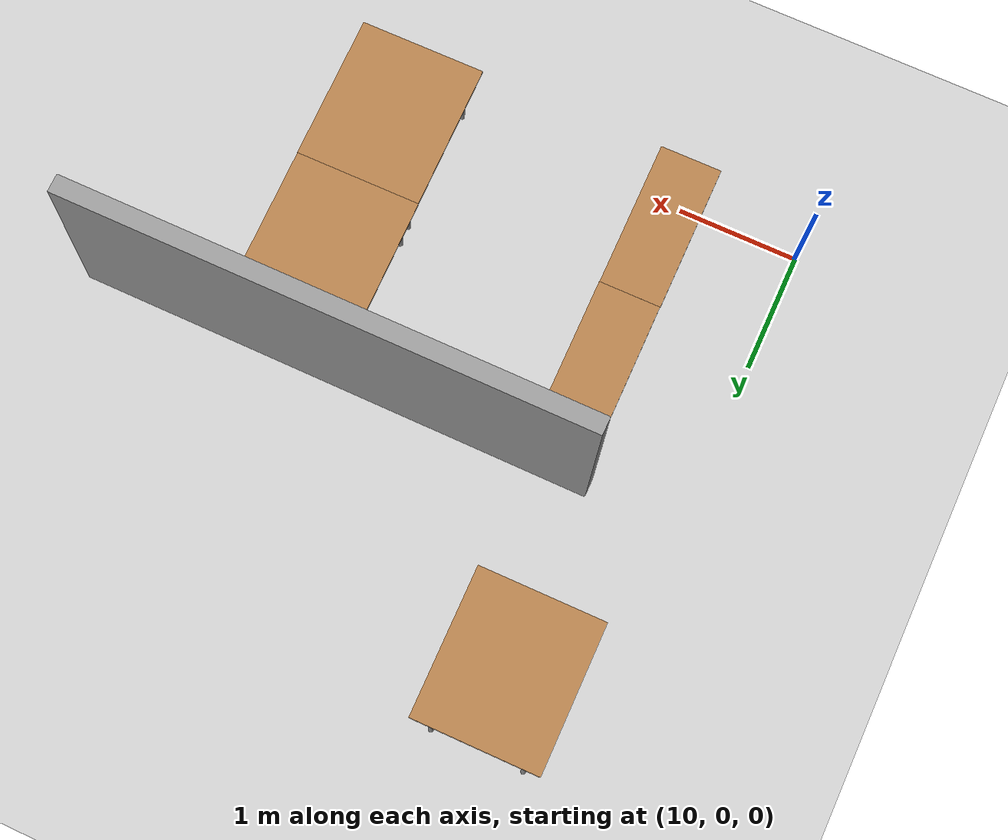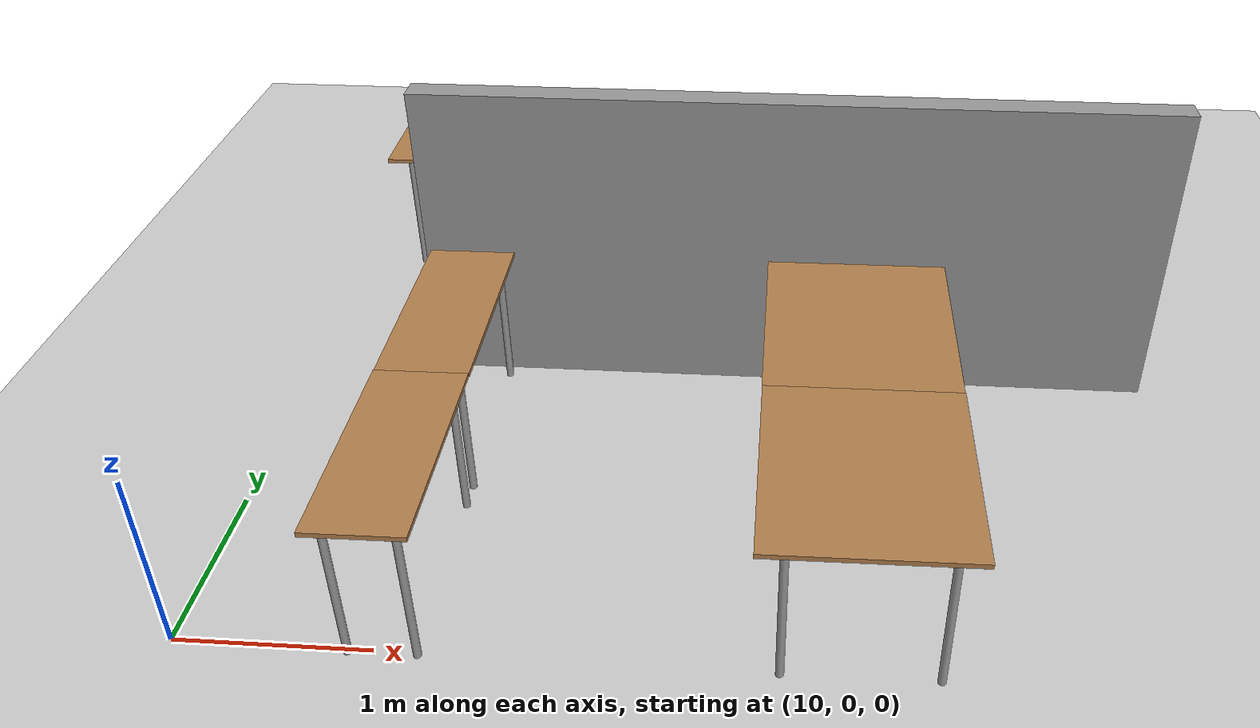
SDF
<sdf version="1.7">
 <world name="default">
  <model name="work_station_clone_clone_clone_clone_clone_clone">
   <link name="link">
    <inertial>
     <inertia><ixx>0</ixx><ixy>0</ixy><ixz>0</ixz><iyy>0</iyy><iyz>0</iyz><izz>0</izz></inertia>
     <mass>0</mass>
    </inertial>
    <visual name="back_right_leg">
     <pose>-0.53 -0.38 0.42 0 -0 0</pose>
     <geometry><cylinder><radius>0.0207459</radius><length>0.822541</length></cylinder></geometry>
     <material>
      <script><uri>file://media/materials/scripts/gazebo.material</uri><name>Gazebo/Grey</name></script>
      <shader type="pixel"><normal_map>__default__</normal_map></shader>
      <ambient>0.3 0.3 0.3 1</ambient>
      <diffuse>0.7 0.7 0.7 1</diffuse>
      <specular>0.01 0.01 0.01 1</specular>
      <emissive>0 0 0 1</emissive>
     </material>
    </visual>
    <visual name="back_left_leg">
     <pose>-0.53 0.38 0.42 0 -0 0</pose>
     <geometry><cylinder><radius>0.0207459</radius><length>0.822541</length></cylinder></geometry>
     <material>
      <script><uri>file://media/materials/scripts/gazebo.material</uri><name>Gazebo/Grey</name></script>
      <shader type="pixel"><normal_map>__default__</normal_map></shader>
      <ambient>0.3 0.3 0.3 1</ambient>
      <diffuse>0.7 0.7 0.7 1</diffuse>
      <specular>0.01 0.01 0.01 1</specular>
      <emissive>0 0 0 1</emissive>
     </material>
    </visual>
    <visual name="front_left_leg">
     <pose>0.53 0.38 0.42 0 -0 0</pose>
     <geometry><cylinder><radius>0.0207459</radius><length>0.822541</length></cylinder></geometry>
     <material>
      <script><uri>file://media/materials/scripts/gazebo.material</uri><name>Gazebo/Grey</name></script>
      <shader type="pixel"><normal_map>__default__</normal_map></shader>
      <ambient>0.3 0.3 0.3 1</ambient>
      <diffuse>0.7 0.7 0.7 1</diffuse>
      <specular>0.01 0.01 0.01 1</specular>
      <emissive>0 0 0 1</emissive>
     </material>
    </visual>
    <visual name="visual1">
     <pose>0 0 0.84 0 -0 0</pose>
     <geometry><box><size>1.21551 1.02942 0.025485</size></box></geometry>
     <material>
      <script><uri>file://media/materials/scripts/gazebo.material</uri><name>Gazebo/Wood</name></script>
      <shader type="pixel"><normal_map>__default__</normal_map></shader>
      <ambient>1 1 1 1</ambient>
      <diffuse>1 1 1 1</diffuse>
      <specular>0.2 0.2 0.2 1</specular>
      <emissive>0 0 0 1</emissive>
     </material>
    </visual>
    <visual name="front_right_leg">
     <pose>0.53 -0.38 0.42 0 -0 0</pose>
     <geometry><cylinder><radius>0.0207459</radius><length>0.822541</length></cylinder></geometry>
     <material>
      <script><uri>file://media/materials/scripts/gazebo.material</uri><name>Gazebo/Grey</name></script>
      <shader type="pixel"><normal_map>__default__</normal_map></shader>
      <ambient>0.3 0.3 0.3 1</ambient>
      <diffuse>0.7 0.7 0.7 1</diffuse>
      <specular>0.01 0.01 0.01 1</specular>
      <emissive>0 0 0 1</emissive>
     </material>
    </visual>
    <collision name="surface">
     <pose>0 0 0.84 0 -0 0</pose>
     <geometry><box><size>1.21551 1.02942 0.025485</size></box></geometry>
     <surface>
      <friction>
       <ode><mu>0.6</mu><mu2>0.6</mu2><fdir1>0 0 0</fdir1><slip1>0</slip1><slip2>0</slip2></ode>
       <torsional>
        <coefficient>1</coefficient>
        <patch_radius>0</patch_radius>
        <surface_radius>0</surface_radius>
        <use_patch_radius>1</use_patch_radius>
        <ode><slip>0</slip></ode>
       </torsional>
      </friction>
      <bounce><restitution_coefficient>0</restitution_coefficient><threshold>1e+06</threshold></bounce>
      <contact>
       <collide_without_contact>0</collide_without_contact>
       <collide_without_contact_bitmask>1</collide_without_contact_bitmask>
       <collide_bitmask>1</collide_bitmask>
       <ode>
        <soft_cfm>0</soft_cfm>
        <soft_erp>0.2</soft_erp>
        <kp>1e+13</kp>
        <kd>1</kd>
        <max_vel>0.01</max_vel>
        <min_depth>0</min_depth>
       </ode>
       <bullet>
        <split_impulse>1</split_impulse>
        <split_impulse_penetration_threshold>-0.01</split_impulse_penetration_threshold>
        <soft_cfm>0</soft_cfm>
        <soft_erp>0.2</soft_erp>
        <kp>1e+13</kp>
        <kd>1</kd>
       </bullet>
      </contact>
     </surface>
    </collision>
    <collision name="front_left_leg">
     <pose>0.53 0.38 0.42 0 -0 0</pose>
     <geometry><cylinder><radius>0.020746</radius><length>0.822541</length></cylinder></geometry>
     <surface>
      <friction>
       <ode><mu>1</mu><mu2>1</mu2><fdir1>0 0 0</fdir1><slip1>0</slip1><slip2>0</slip2></ode>
       <torsional>
        <coefficient>1</coefficient>
        <patch_radius>0</patch_radius>
        <surface_radius>0</surface_radius>
        <use_patch_radius>1</use_patch_radius>
        <ode><slip>0</slip></ode>
       </torsional>
      </friction>
      <bounce><restitution_coefficient>0</restitution_coefficient><threshold>1e+06</threshold></bounce>
      <contact>
       <collide_without_contact>0</collide_without_contact>
       <collide_without_contact_bitmask>1</collide_without_contact_bitmask>
       <collide_bitmask>1</collide_bitmask>
       <ode>
        <soft_cfm>0</soft_cfm>
        <soft_erp>0.2</soft_erp>
        <kp>1e+13</kp>
        <kd>1</kd>
        <max_vel>0.01</max_vel>
        <min_depth>0</min_depth>
       </ode>
       <bullet>
        <split_impulse>1</split_impulse>
        <split_impulse_penetration_threshold>-0.01</split_impulse_penetration_threshold>
        <soft_cfm>0</soft_cfm>
        <soft_erp>0.2</soft_erp>
        <kp>1e+13</kp>
        <kd>1</kd>
       </bullet>
      </contact>
     </surface>
    </collision>
    <collision name="front_right_leg">
     <pose>0.53 -0.38 0.42 0 -0 0</pose>
     <geometry><cylinder><radius>0.020746</radius><length>0.822541</length></cylinder></geometry>
     <surface>
      <friction>
       <ode><mu>1</mu><mu2>1</mu2><fdir1>0 0 0</fdir1><slip1>0</slip1><slip2>0</slip2></ode>
       <torsional>
        <coefficient>1</coefficient>
        <patch_radius>0</patch_radius>
        <surface_radius>0</surface_radius>
        <use_patch_radius>1</use_patch_radius>
        <ode><slip>0</slip></ode>
       </torsional>
      </friction>
      <bounce><restitution_coefficient>0</restitution_coefficient><threshold>1e+06</threshold></bounce>
      <contact>
       <collide_without_contact>0</collide_without_contact>
       <collide_without_contact_bitmask>1</collide_without_contact_bitmask>
       <collide_bitmask>1</collide_bitmask>
       <ode>
        <soft_cfm>0</soft_cfm>
        <soft_erp>0.2</soft_erp>
        <kp>1e+13</kp>
        <kd>1</kd>
        <max_vel>0.01</max_vel>
        <min_depth>0</min_depth>
       </ode>
       <bullet>
        <split_impulse>1</split_impulse>
        <split_impulse_penetration_threshold>-0.01</split_impulse_penetration_threshold>
        <soft_cfm>0</soft_cfm>
        <soft_erp>0.2</soft_erp>
        <kp>1e+13</kp>
        <kd>1</kd>
       </bullet>
      </contact>
     </surface>
    </collision>
    <collision name="back_right_leg">
     <pose>-0.53 -0.38 0.42 0 -0 0</pose>
     <geometry><cylinder><radius>0.020746</radius><length>0.822541</length></cylinder></geometry>
     <surface>
      <friction>
       <ode><mu>1</mu><mu2>1</mu2><fdir1>0 0 0</fdir1><slip1>0</slip1><slip2>0</slip2></ode>
       <torsional>
        <coefficient>1</coefficient>
        <patch_radius>0</patch_radius>
        <surface_radius>0</surface_radius>
        <use_patch_radius>1</use_patch_radius>
        <ode><slip>0</slip></ode>
       </torsional>
      </friction>
      <bounce><restitution_coefficient>0</restitution_coefficient><threshold>1e+06</threshold></bounce>
      <contact>
       <collide_without_contact>0</collide_without_contact>
       <collide_without_contact_bitmask>1</collide_without_contact_bitmask>
       <collide_bitmask>1</collide_bitmask>
       <ode>
        <soft_cfm>0</soft_cfm>
        <soft_erp>0.2</soft_erp>
        <kp>1e+13</kp>
        <kd>1</kd>
        <max_vel>0.01</max_vel>
        <min_depth>0</min_depth>
       </ode>
       <bullet>
        <split_impulse>1</split_impulse>
        <split_impulse_penetration_threshold>-0.01</split_impulse_penetration_threshold>
        <soft_cfm>0</soft_cfm>
        <soft_erp>0.2</soft_erp>
        <kp>1e+13</kp>
        <kd>1</kd>
       </bullet>
      </contact>
     </surface>
    </collision>
    <collision name="back_left_leg">
     <pose>-0.53 0.38 0.42 0 -0 0</pose>
     <geometry><cylinder><radius>0.020746</radius><length>0.822541</length></cylinder></geometry>
     <surface>
      <friction>
       <ode><mu>1</mu><mu2>1</mu2><fdir1>0 0 0</fdir1><slip1>0</slip1><slip2>0</slip2></ode>
       <torsional>
        <coefficient>1</coefficient>
        <patch_radius>0</patch_radius>
        <surface_radius>0</surface_radius>
        <use_patch_radius>1</use_patch_radius>
        <ode><slip>0</slip></ode>
       </torsional>
      </friction>
      <bounce><restitution_coefficient>0</restitution_coefficient><threshold>1e+06</threshold></bounce>
      <contact>
       <collide_without_contact>0</collide_without_contact>
       <collide_without_contact_bitmask>1</collide_without_contact_bitmask>
       <collide_bitmask>1</collide_bitmask>
       <ode>
        <soft_cfm>0</soft_cfm>
        <soft_erp>0.2</soft_erp>
        <kp>1e+13</kp>
        <kd>1</kd>
        <max_vel>0.01</max_vel>
        <min_depth>0</min_depth>
       </ode>
       <bullet>
        <split_impulse>1</split_impulse>
        <split_impulse_penetration_threshold>-0.01</split_impulse_penetration_threshold>
        <soft_cfm>0</soft_cfm>
        <soft_erp>0.2</soft_erp>
        <kp>1e+13</kp>
        <kd>1</kd>
       </bullet>
      </contact>
     </surface>
    </collision>
   </link>
   <static>1</static>
   <pose>13.3179 1.73421 -0.010044 0 0 -1.56528</pose>
  </model>
  <model name="work_station_clone_clone_clone_clone_clone_clone_clone">
   <link name="link">
    <inertial>
     <inertia><ixx>0</ixx><ixy>0</ixy><ixz>0</ixz><iyy>0</iyy><iyz>0</iyz><izz>0</izz></inertia>
     <mass>0</mass>
    </inertial>
    <visual name="back_right_leg">
     <pose>-0.53 -0.38 0.42 0 -0 0</pose>
     <geometry><cylinder><radius>0.0207459</radius><length>0.822541</length></cylinder></geometry>
     <material>
      <script><uri>file://media/materials/scripts/gazebo.material</uri><name>Gazebo/Grey</name></script>
      <shader type="pixel"><normal_map>__default__</normal_map></shader>
      <ambient>0.3 0.3 0.3 1</ambient>
      <diffuse>0.7 0.7 0.7 1</diffuse>
      <specular>0.01 0.01 0.01 1</specular>
      <emissive>0 0 0 1</emissive>
     </material>
    </visual>
    <visual name="back_left_leg">
     <pose>-0.53 0.38 0.42 0 -0 0</pose>
     <geometry><cylinder><radius>0.0207459</radius><length>0.822541</length></cylinder></geometry>
     <material>
      <script><uri>file://media/materials/scripts/gazebo.material</uri><name>Gazebo/Grey</name></script>
      <shader type="pixel"><normal_map>__default__</normal_map></shader>
      <ambient>0.3 0.3 0.3 1</ambient>
      <diffuse>0.7 0.7 0.7 1</diffuse>
      <specular>0.01 0.01 0.01 1</specular>
      <emissive>0 0 0 1</emissive>
     </material>
    </visual>
    <visual name="front_left_leg">
     <pose>0.53 0.38 0.42 0 -0 0</pose>
     <geometry><cylinder><radius>0.0207459</radius><length>0.822541</length></cylinder></geometry>
     <material>
      <script><uri>file://media/materials/scripts/gazebo.material</uri><name>Gazebo/Grey</name></script>
      <shader type="pixel"><normal_map>__default__</normal_map></shader>
      <ambient>0.3 0.3 0.3 1</ambient>
      <diffuse>0.7 0.7 0.7 1</diffuse>
      <specular>0.01 0.01 0.01 1</specular>
      <emissive>0 0 0 1</emissive>
     </material>
    </visual>
    <visual name="visual1">
     <pose>0 0 0.84 0 -0 0</pose>
     <geometry><box><size>1.21551 1.02942 0.025485</size></box></geometry>
     <material>
      <script><uri>file://media/materials/scripts/gazebo.material</uri><name>Gazebo/Wood</name></script>
      <shader type="pixel"><normal_map>__default__</normal_map></shader>
      <ambient>1 1 1 1</ambient>
      <diffuse>1 1 1 1</diffuse>
      <specular>0.2 0.2 0.2 1</specular>
      <emissive>0 0 0 1</emissive>
     </material>
    </visual>
    <visual name="front_right_leg">
     <pose>0.53 -0.38 0.42 0 -0 0</pose>
     <geometry><cylinder><radius>0.0207459</radius><length>0.822541</length></cylinder></geometry>
     <material>
      <script><uri>file://media/materials/scripts/gazebo.material</uri><name>Gazebo/Grey</name></script>
      <shader type="pixel"><normal_map>__default__</normal_map></shader>
      <ambient>0.3 0.3 0.3 1</ambient>
      <diffuse>0.7 0.7 0.7 1</diffuse>
      <specular>0.01 0.01 0.01 1</specular>
      <emissive>0 0 0 1</emissive>
     </material>
    </visual>
    <collision name="surface">
     <pose>0 0 0.84 0 -0 0</pose>
     <geometry><box><size>1.21551 1.02942 0.025485</size></box></geometry>
     <surface>
      <friction>
       <ode><mu>0.6</mu><mu2>0.6</mu2><fdir1>0 0 0</fdir1><slip1>0</slip1><slip2>0</slip2></ode>
       <torsional>
        <coefficient>1</coefficient>
        <patch_radius>0</patch_radius>
        <surface_radius>0</surface_radius>
        <use_patch_radius>1</use_patch_radius>
        <ode><slip>0</slip></ode>
       </torsional>
      </friction>
      <bounce><restitution_coefficient>0</restitution_coefficient><threshold>1e+06</threshold></bounce>
      <contact>
       <collide_without_contact>0</collide_without_contact>
       <collide_without_contact_bitmask>1</collide_without_contact_bitmask>
       <collide_bitmask>1</collide_bitmask>
       <ode>
        <soft_cfm>0</soft_cfm>
        <soft_erp>0.2</soft_erp>
        <kp>1e+13</kp>
        <kd>1</kd>
        <max_vel>0.01</max_vel>
        <min_depth>0</min_depth>
       </ode>
       <bullet>
        <split_impulse>1</split_impulse>
        <split_impulse_penetration_threshold>-0.01</split_impulse_penetration_threshold>
        <soft_cfm>0</soft_cfm>
        <soft_erp>0.2</soft_erp>
        <kp>1e+13</kp>
        <kd>1</kd>
       </bullet>
      </contact>
     </surface>
    </collision>
    <collision name="front_left_leg">
     <pose>0.53 0.38 0.42 0 -0 0</pose>
     <geometry><cylinder><radius>0.020746</radius><length>0.822541</length></cylinder></geometry>
     <surface>
      <friction>
       <ode><mu>1</mu><mu2>1</mu2><fdir1>0 0 0</fdir1><slip1>0</slip1><slip2>0</slip2></ode>
       <torsional>
        <coefficient>1</coefficient>
        <patch_radius>0</patch_radius>
        <surface_radius>0</surface_radius>
        <use_patch_radius>1</use_patch_radius>
        <ode><slip>0</slip></ode>
       </torsional>
      </friction>
      <bounce><restitution_coefficient>0</restitution_coefficient><threshold>1e+06</threshold></bounce>
      <contact>
       <collide_without_contact>0</collide_without_contact>
       <collide_without_contact_bitmask>1</collide_without_contact_bitmask>
       <collide_bitmask>1</collide_bitmask>
       <ode>
        <soft_cfm>0</soft_cfm>
        <soft_erp>0.2</soft_erp>
        <kp>1e+13</kp>
        <kd>1</kd>
        <max_vel>0.01</max_vel>
        <min_depth>0</min_depth>
       </ode>
       <bullet>
        <split_impulse>1</split_impulse>
        <split_impulse_penetration_threshold>-0.01</split_impulse_penetration_threshold>
        <soft_cfm>0</soft_cfm>
        <soft_erp>0.2</soft_erp>
        <kp>1e+13</kp>
        <kd>1</kd>
       </bullet>
      </contact>
     </surface>
    </collision>
    <collision name="front_right_leg">
     <pose>0.53 -0.38 0.42 0 -0 0</pose>
     <geometry><cylinder><radius>0.020746</radius><length>0.822541</length></cylinder></geometry>
     <surface>
      <friction>
       <ode><mu>1</mu><mu2>1</mu2><fdir1>0 0 0</fdir1><slip1>0</slip1><slip2>0</slip2></ode>
       <torsional>
        <coefficient>1</coefficient>
        <patch_radius>0</patch_radius>
        <surface_radius>0</surface_radius>
        <use_patch_radius>1</use_patch_radius>
        <ode><slip>0</slip></ode>
       </torsional>
      </friction>
      <bounce><restitution_coefficient>0</restitution_coefficient><threshold>1e+06</threshold></bounce>
      <contact>
       <collide_without_contact>0</collide_without_contact>
       <collide_without_contact_bitmask>1</collide_without_contact_bitmask>
       <collide_bitmask>1</collide_bitmask>
       <ode>
        <soft_cfm>0</soft_cfm>
        <soft_erp>0.2</soft_erp>
        <kp>1e+13</kp>
        <kd>1</kd>
        <max_vel>0.01</max_vel>
        <min_depth>0</min_depth>
       </ode>
       <bullet>
        <split_impulse>1</split_impulse>
        <split_impulse_penetration_threshold>-0.01</split_impulse_penetration_threshold>
        <soft_cfm>0</soft_cfm>
        <soft_erp>0.2</soft_erp>
        <kp>1e+13</kp>
        <kd>1</kd>
       </bullet>
      </contact>
     </surface>
    </collision>
    <collision name="back_right_leg">
     <pose>-0.53 -0.38 0.42 0 -0 0</pose>
     <geometry><cylinder><radius>0.020746</radius><length>0.822541</length></cylinder></geometry>
     <surface>
      <friction>
       <ode><mu>1</mu><mu2>1</mu2><fdir1>0 0 0</fdir1><slip1>0</slip1><slip2>0</slip2></ode>
       <torsional>
        <coefficient>1</coefficient>
        <patch_radius>0</patch_radius>
        <surface_radius>0</surface_radius>
        <use_patch_radius>1</use_patch_radius>
        <ode><slip>0</slip></ode>
       </torsional>
      </friction>
      <bounce><restitution_coefficient>0</restitution_coefficient><threshold>1e+06</threshold></bounce>
      <contact>
       <collide_without_contact>0</collide_without_contact>
       <collide_without_contact_bitmask>1</collide_without_contact_bitmask>
       <collide_bitmask>1</collide_bitmask>
       <ode>
        <soft_cfm>0</soft_cfm>
        <soft_erp>0.2</soft_erp>
        <kp>1e+13</kp>
        <kd>1</kd>
        <max_vel>0.01</max_vel>
        <min_depth>0</min_depth>
       </ode>
       <bullet>
        <split_impulse>1</split_impulse>
        <split_impulse_penetration_threshold>-0.01</split_impulse_penetration_threshold>
        <soft_cfm>0</soft_cfm>
        <soft_erp>0.2</soft_erp>
        <kp>1e+13</kp>
        <kd>1</kd>
       </bullet>
      </contact>
     </surface>
    </collision>
    <collision name="back_left_leg">
     <pose>-0.53 0.38 0.42 0 -0 0</pose>
     <geometry><cylinder><radius>0.020746</radius><length>0.822541</length></cylinder></geometry>
     <surface>
      <friction>
       <ode><mu>1</mu><mu2>1</mu2><fdir1>0 0 0</fdir1><slip1>0</slip1><slip2>0</slip2></ode>
       <torsional>
        <coefficient>1</coefficient>
        <patch_radius>0</patch_radius>
        <surface_radius>0</surface_radius>
        <use_patch_radius>1</use_patch_radius>
        <ode><slip>0</slip></ode>
       </torsional>
      </friction>
      <bounce><restitution_coefficient>0</restitution_coefficient><threshold>1e+06</threshold></bounce>
      <contact>
       <collide_without_contact>0</collide_without_contact>
       <collide_without_contact_bitmask>1</collide_without_contact_bitmask>
       <collide_bitmask>1</collide_bitmask>
       <ode>
        <soft_cfm>0</soft_cfm>
        <soft_erp>0.2</soft_erp>
        <kp>1e+13</kp>
        <kd>1</kd>
        <max_vel>0.01</max_vel>
        <min_depth>0</min_depth>
       </ode>
       <bullet>
        <split_impulse>1</split_impulse>
        <split_impulse_penetration_threshold>-0.01</split_impulse_penetration_threshold>
        <soft_cfm>0</soft_cfm>
        <soft_erp>0.2</soft_erp>
        <kp>1e+13</kp>
        <kd>1</kd>
       </bullet>
      </contact>
     </surface>
    </collision>
   </link>
   <static>1</static>
   <pose>13.3268 0.51887 -0.010044 0 0 -1.56528</pose>
  </model>
  <model name="work_station_clone_clone_clone_clone_clone_clone_clone_clone_clone_clone_0_clone_clone_clone_clone_clone">
   <link name="link">
    <inertial>
     <inertia><ixx>0</ixx><ixy>0</ixy><ixz>0</ixz><iyy>0</iyy><iyz>0</iyz><izz>0</izz></inertia>
     <mass>0</mass>
    </inertial>
    <visual name="back_right_leg">
     <pose>-0.53 -0.38 0.42 0 -0 0</pose>
     <geometry><cylinder><radius>0.0207459</radius><length>0.822541</length></cylinder></geometry>
     <material>
      <script><uri>file://media/materials/scripts/gazebo.material</uri><name>Gazebo/Grey</name></script>
      <shader type="pixel"><normal_map>__default__</normal_map></shader>
      <ambient>0.3 0.3 0.3 1</ambient>
      <diffuse>0.7 0.7 0.7 1</diffuse>
      <specular>0.01 0.01 0.01 1</specular>
      <emissive>0 0 0 1</emissive>
     </material>
    </visual>
    <visual name="back_left_leg">
     <pose>-0.53 0.38 0.42 0 -0 0</pose>
     <geometry><cylinder><radius>0.0207459</radius><length>0.822541</length></cylinder></geometry>
     <material>
      <script><uri>file://media/materials/scripts/gazebo.material</uri><name>Gazebo/Grey</name></script>
      <shader type="pixel"><normal_map>__default__</normal_map></shader>
      <ambient>0.3 0.3 0.3 1</ambient>
      <diffuse>0.7 0.7 0.7 1</diffuse>
      <specular>0.01 0.01 0.01 1</specular>
      <emissive>0 0 0 1</emissive>
     </material>
    </visual>
    <visual name="front_left_leg">
     <pose>0.53 0.38 0.42 0 -0 0</pose>
     <geometry><cylinder><radius>0.0207459</radius><length>0.822541</length></cylinder></geometry>
     <material>
      <script><uri>file://media/materials/scripts/gazebo.material</uri><name>Gazebo/Grey</name></script>
      <shader type="pixel"><normal_map>__default__</normal_map></shader>
      <ambient>0.3 0.3 0.3 1</ambient>
      <diffuse>0.7 0.7 0.7 1</diffuse>
      <specular>0.01 0.01 0.01 1</specular>
      <emissive>0 0 0 1</emissive>
     </material>
    </visual>
    <visual name="visual1">
     <pose>0 0 0.84 0 -0 0</pose>
     <geometry><box><size>1.21551 1.02942 0.025485</size></box></geometry>
     <material>
      <script><uri>file://media/materials/scripts/gazebo.material</uri><name>Gazebo/Wood</name></script>
      <shader type="pixel"><normal_map>__default__</normal_map></shader>
      <ambient>1 1 1 1</ambient>
      <diffuse>1 1 1 1</diffuse>
      <specular>0.2 0.2 0.2 1</specular>
      <emissive>0 0 0 1</emissive>
     </material>
    </visual>
    <visual name="front_right_leg">
     <pose>0.53 -0.38 0.42 0 -0 0</pose>
     <geometry><cylinder><radius>0.0207459</radius><length>0.822541</length></cylinder></geometry>
     <material>
      <script><uri>file://media/materials/scripts/gazebo.material</uri><name>Gazebo/Grey</name></script>
      <shader type="pixel"><normal_map>__default__</normal_map></shader>
      <ambient>0.3 0.3 0.3 1</ambient>
      <diffuse>0.7 0.7 0.7 1</diffuse>
      <specular>0.01 0.01 0.01 1</specular>
      <emissive>0 0 0 1</emissive>
     </material>
    </visual>
    <collision name="surface">
     <pose>0 0 0.84 0 -0 0</pose>
     <geometry><box><size>1.21551 1.02942 0.025485</size></box></geometry>
     <surface>
      <friction>
       <ode><mu>0.6</mu><mu2>0.6</mu2><fdir1>0 0 0</fdir1><slip1>0</slip1><slip2>0</slip2></ode>
       <torsional>
        <coefficient>1</coefficient>
        <patch_radius>0</patch_radius>
        <surface_radius>0</surface_radius>
        <use_patch_radius>1</use_patch_radius>
        <ode><slip>0</slip></ode>
       </torsional>
      </friction>
      <bounce><restitution_coefficient>0</restitution_coefficient><threshold>1e+06</threshold></bounce>
      <contact>
       <collide_without_contact>0</collide_without_contact>
       <collide_without_contact_bitmask>1</collide_without_contact_bitmask>
       <collide_bitmask>1</collide_bitmask>
       <ode>
        <soft_cfm>0</soft_cfm>
        <soft_erp>0.2</soft_erp>
        <kp>1e+13</kp>
        <kd>1</kd>
        <max_vel>0.01</max_vel>
        <min_depth>0</min_depth>
       </ode>
       <bullet>
        <split_impulse>1</split_impulse>
        <split_impulse_penetration_threshold>-0.01</split_impulse_penetration_threshold>
        <soft_cfm>0</soft_cfm>
        <soft_erp>0.2</soft_erp>
        <kp>1e+13</kp>
        <kd>1</kd>
       </bullet>
      </contact>
     </surface>
    </collision>
    <collision name="front_left_leg">
     <pose>0.53 0.38 0.42 0 -0 0</pose>
     <geometry><cylinder><radius>0.020746</radius><length>0.822541</length></cylinder></geometry>
     <surface>
      <friction>
       <ode><mu>1</mu><mu2>1</mu2><fdir1>0 0 0</fdir1><slip1>0</slip1><slip2>0</slip2></ode>
       <torsional>
        <coefficient>1</coefficient>
        <patch_radius>0</patch_radius>
        <surface_radius>0</surface_radius>
        <use_patch_radius>1</use_patch_radius>
        <ode><slip>0</slip></ode>
       </torsional>
      </friction>
      <bounce><restitution_coefficient>0</restitution_coefficient><threshold>1e+06</threshold></bounce>
      <contact>
       <collide_without_contact>0</collide_without_contact>
       <collide_without_contact_bitmask>1</collide_without_contact_bitmask>
       <collide_bitmask>1</collide_bitmask>
       <ode>
        <soft_cfm>0</soft_cfm>
        <soft_erp>0.2</soft_erp>
        <kp>1e+13</kp>
        <kd>1</kd>
        <max_vel>0.01</max_vel>
        <min_depth>0</min_depth>
       </ode>
       <bullet>
        <split_impulse>1</split_impulse>
        <split_impulse_penetration_threshold>-0.01</split_impulse_penetration_threshold>
        <soft_cfm>0</soft_cfm>
        <soft_erp>0.2</soft_erp>
        <kp>1e+13</kp>
        <kd>1</kd>
       </bullet>
      </contact>
     </surface>
    </collision>
    <collision name="front_right_leg">
     <pose>0.53 -0.38 0.42 0 -0 0</pose>
     <geometry><cylinder><radius>0.020746</radius><length>0.822541</length></cylinder></geometry>
     <surface>
      <friction>
       <ode><mu>1</mu><mu2>1</mu2><fdir1>0 0 0</fdir1><slip1>0</slip1><slip2>0</slip2></ode>
       <torsional>
        <coefficient>1</coefficient>
        <patch_radius>0</patch_radius>
        <surface_radius>0</surface_radius>
        <use_patch_radius>1</use_patch_radius>
        <ode><slip>0</slip></ode>
       </torsional>
      </friction>
      <bounce><restitution_coefficient>0</restitution_coefficient><threshold>1e+06</threshold></bounce>
      <contact>
       <collide_without_contact>0</collide_without_contact>
       <collide_without_contact_bitmask>1</collide_without_contact_bitmask>
       <collide_bitmask>1</collide_bitmask>
       <ode>
        <soft_cfm>0</soft_cfm>
        <soft_erp>0.2</soft_erp>
        <kp>1e+13</kp>
        <kd>1</kd>
        <max_vel>0.01</max_vel>
        <min_depth>0</min_depth>
       </ode>
       <bullet>
        <split_impulse>1</split_impulse>
        <split_impulse_penetration_threshold>-0.01</split_impulse_penetration_threshold>
        <soft_cfm>0</soft_cfm>
        <soft_erp>0.2</soft_erp>
        <kp>1e+13</kp>
        <kd>1</kd>
       </bullet>
      </contact>
     </surface>
    </collision>
    <collision name="back_right_leg">
     <pose>-0.53 -0.38 0.42 0 -0 0</pose>
     <geometry><cylinder><radius>0.020746</radius><length>0.822541</length></cylinder></geometry>
     <surface>
      <friction>
       <ode><mu>1</mu><mu2>1</mu2><fdir1>0 0 0</fdir1><slip1>0</slip1><slip2>0</slip2></ode>
       <torsional>
        <coefficient>1</coefficient>
        <patch_radius>0</patch_radius>
        <surface_radius>0</surface_radius>
        <use_patch_radius>1</use_patch_radius>
        <ode><slip>0</slip></ode>
       </torsional>
      </friction>
      <bounce><restitution_coefficient>0</restitution_coefficient><threshold>1e+06</threshold></bounce>
      <contact>
       <collide_without_contact>0</collide_without_contact>
       <collide_without_contact_bitmask>1</collide_without_contact_bitmask>
       <collide_bitmask>1</collide_bitmask>
       <ode>
        <soft_cfm>0</soft_cfm>
        <soft_erp>0.2</soft_erp>
        <kp>1e+13</kp>
        <kd>1</kd>
        <max_vel>0.01</max_vel>
        <min_depth>0</min_depth>
       </ode>
       <bullet>
        <split_impulse>1</split_impulse>
        <split_impulse_penetration_threshold>-0.01</split_impulse_penetration_threshold>
        <soft_cfm>0</soft_cfm>
        <soft_erp>0.2</soft_erp>
        <kp>1e+13</kp>
        <kd>1</kd>
       </bullet>
      </contact>
     </surface>
    </collision>
    <collision name="back_left_leg">
     <pose>-0.53 0.38 0.42 0 -0 0</pose>
     <geometry><cylinder><radius>0.020746</radius><length>0.822541</length></cylinder></geometry>
     <surface>
      <friction>
       <ode><mu>1</mu><mu2>1</mu2><fdir1>0 0 0</fdir1><slip1>0</slip1><slip2>0</slip2></ode>
       <torsional>
        <coefficient>1</coefficient>
        <patch_radius>0</patch_radius>
        <surface_radius>0</surface_radius>
        <use_patch_radius>1</use_patch_radius>
        <ode><slip>0</slip></ode>
       </torsional>
      </friction>
      <bounce><restitution_coefficient>0</restitution_coefficient><threshold>1e+06</threshold></bounce>
      <contact>
       <collide_without_contact>0</collide_without_contact>
       <collide_without_contact_bitmask>1</collide_without_contact_bitmask>
       <collide_bitmask>1</collide_bitmask>
       <ode>
        <soft_cfm>0</soft_cfm>
        <soft_erp>0.2</soft_erp>
        <kp>1e+13</kp>
        <kd>1</kd>
        <max_vel>0.01</max_vel>
        <min_depth>0</min_depth>
       </ode>
       <bullet>
        <split_impulse>1</split_impulse>
        <split_impulse_penetration_threshold>-0.01</split_impulse_penetration_threshold>
        <soft_cfm>0</soft_cfm>
        <soft_erp>0.2</soft_erp>
        <kp>1e+13</kp>
        <kd>1</kd>
       </bullet>
      </contact>
     </surface>
    </collision>
   </link>
   <static>1</static>
   <pose>10.7097 4.10324 -0.010044 0 0 -1.56528</pose>
  </model>
  <model name="work_station_half">
   <link name="link">
    <inertial>
     <inertia><ixx>0</ixx><ixy>0</ixy><ixz>0</ixz><iyy>0</iyy><iyz>0</iyz><izz>0</izz></inertia>
     <mass>0</mass>
    </inertial>
    <visual name="back_right_leg">
     <pose>-0.53 -0.17 0.42 0 -0 0</pose>
     <geometry><cylinder><radius>0.0207459</radius><length>0.822541</length></cylinder></geometry>
     <material>
      <script><uri>file://media/materials/scripts/gazebo.material</uri><name>Gazebo/Grey</name></script>
      <shader type="pixel"><normal_map>__default__</normal_map></shader>
      <ambient>0.3 0.3 0.3 1</ambient>
      <diffuse>0.7 0.7 0.7 1</diffuse>
      <specular>0.01 0.01 0.01 1</specular>
      <emissive>0 0 0 1</emissive>
     </material>
    </visual>
    <visual name="back_left_leg">
     <pose>-0.53 0.17 0.42 0 -0 0</pose>
     <geometry><cylinder><radius>0.0207459</radius><length>0.822541</length></cylinder></geometry>
     <material>
      <script><uri>file://media/materials/scripts/gazebo.material</uri><name>Gazebo/Grey</name></script>
      <shader type="pixel"><normal_map>__default__</normal_map></shader>
      <ambient>0.3 0.3 0.3 1</ambient>
      <diffuse>0.7 0.7 0.7 1</diffuse>
      <specular>0.01 0.01 0.01 1</specular>
      <emissive>0 0 0 1</emissive>
     </material>
    </visual>
    <visual name="front_left_leg">
     <pose>0.53 0.17 0.42 0 -0 0</pose>
     <geometry><cylinder><radius>0.0207459</radius><length>0.822541</length></cylinder></geometry>
     <material>
      <script><uri>file://media/materials/scripts/gazebo.material</uri><name>Gazebo/Grey</name></script>
      <shader type="pixel"><normal_map>__default__</normal_map></shader>
      <ambient>0.3 0.3 0.3 1</ambient>
      <diffuse>0.7 0.7 0.7 1</diffuse>
      <specular>0.01 0.01 0.01 1</specular>
      <emissive>0 0 0 1</emissive>
     </material>
    </visual>
    <visual name="visual1">
     <pose>0 0 0.84 0 -0 0</pose>
     <geometry><box><size>1.21551 0.5 0.025485</size></box></geometry>
     <material>
      <script><uri>file://media/materials/scripts/gazebo.material</uri><name>Gazebo/Wood</name></script>
      <shader type="pixel"><normal_map>__default__</normal_map></shader>
      <ambient>1 1 1 1</ambient>
      <diffuse>1 1 1 1</diffuse>
      <specular>0.2 0.2 0.2 1</specular>
      <emissive>0 0 0 1</emissive>
     </material>
    </visual>
    <visual name="front_right_leg">
     <pose>0.53 -0.17 0.42 0 -0 0</pose>
     <geometry><cylinder><radius>0.0207459</radius><length>0.822541</length></cylinder></geometry>
     <material>
      <script><uri>file://media/materials/scripts/gazebo.material</uri><name>Gazebo/Grey</name></script>
      <shader type="pixel"><normal_map>__default__</normal_map></shader>
      <ambient>0.3 0.3 0.3 1</ambient>
      <diffuse>0.7 0.7 0.7 1</diffuse>
      <specular>0.01 0.01 0.01 1</specular>
      <emissive>0 0 0 1</emissive>
     </material>
    </visual>
    <collision name="surface">
     <pose>0 0 0.84 0 -0 0</pose>
     <geometry><box><size>1.21551 0.5 0.025485</size></box></geometry>
     <surface>
      <friction>
       <ode><mu>0.6</mu><mu2>0.6</mu2><fdir1>0 0 0</fdir1><slip1>0</slip1><slip2>0</slip2></ode>
       <torsional>
        <coefficient>1</coefficient>
        <patch_radius>0</patch_radius>
        <surface_radius>0</surface_radius>
        <use_patch_radius>1</use_patch_radius>
        <ode><slip>0</slip></ode>
       </torsional>
      </friction>
      <bounce><restitution_coefficient>0</restitution_coefficient><threshold>1e+06</threshold></bounce>
      <contact>
       <collide_without_contact>0</collide_without_contact>
       <collide_without_contact_bitmask>1</collide_without_contact_bitmask>
       <collide_bitmask>1</collide_bitmask>
       <ode>
        <soft_cfm>0</soft_cfm>
        <soft_erp>0.2</soft_erp>
        <kp>1e+13</kp>
        <kd>1</kd>
        <max_vel>0.01</max_vel>
        <min_depth>0</min_depth>
       </ode>
       <bullet>
        <split_impulse>1</split_impulse>
        <split_impulse_penetration_threshold>-0.01</split_impulse_penetration_threshold>
        <soft_cfm>0</soft_cfm>
        <soft_erp>0.2</soft_erp>
        <kp>1e+13</kp>
        <kd>1</kd>
       </bullet>
      </contact>
     </surface>
    </collision>
    <collision name="front_right_leg">
     <pose>0.53 -0.17 0.42 0 -0 0</pose>
     <geometry><cylinder><radius>0.020746</radius><length>0.822541</length></cylinder></geometry>
     <surface>
      <friction>
       <ode><mu>1</mu><mu2>1</mu2><fdir1>0 0 0</fdir1><slip1>0</slip1><slip2>0</slip2></ode>
       <torsional>
        <coefficient>1</coefficient>
        <patch_radius>0</patch_radius>
        <surface_radius>0</surface_radius>
        <use_patch_radius>1</use_patch_radius>
        <ode><slip>0</slip></ode>
       </torsional>
      </friction>
      <bounce><restitution_coefficient>0</restitution_coefficient><threshold>1e+06</threshold></bounce>
      <contact>
       <collide_without_contact>0</collide_without_contact>
       <collide_without_contact_bitmask>1</collide_without_contact_bitmask>
       <collide_bitmask>1</collide_bitmask>
       <ode>
        <soft_cfm>0</soft_cfm>
        <soft_erp>0.2</soft_erp>
        <kp>1e+13</kp>
        <kd>1</kd>
        <max_vel>0.01</max_vel>
        <min_depth>0</min_depth>
       </ode>
       <bullet>
        <split_impulse>1</split_impulse>
        <split_impulse_penetration_threshold>-0.01</split_impulse_penetration_threshold>
        <soft_cfm>0</soft_cfm>
        <soft_erp>0.2</soft_erp>
        <kp>1e+13</kp>
        <kd>1</kd>
       </bullet>
      </contact>
     </surface>
    </collision>
    <collision name="front_left_leg">
     <pose>0.53 0.17 0.42 0 -0 0</pose>
     <geometry><cylinder><radius>0.020746</radius><length>0.822541</length></cylinder></geometry>
     <surface>
      <friction>
       <ode><mu>1</mu><mu2>1</mu2><fdir1>0 0 0</fdir1><slip1>0</slip1><slip2>0</slip2></ode>
       <torsional>
        <coefficient>1</coefficient>
        <patch_radius>0</patch_radius>
        <surface_radius>0</surface_radius>
        <use_patch_radius>1</use_patch_radius>
        <ode><slip>0</slip></ode>
       </torsional>
      </friction>
      <bounce><restitution_coefficient>0</restitution_coefficient><threshold>1e+06</threshold></bounce>
      <contact>
       <collide_without_contact>0</collide_without_contact>
       <collide_without_contact_bitmask>1</collide_without_contact_bitmask>
       <collide_bitmask>1</collide_bitmask>
       <ode>
        <soft_cfm>0</soft_cfm>
        <soft_erp>0.2</soft_erp>
        <kp>1e+13</kp>
        <kd>1</kd>
        <max_vel>0.01</max_vel>
        <min_depth>0</min_depth>
       </ode>
       <bullet>
        <split_impulse>1</split_impulse>
        <split_impulse_penetration_threshold>-0.01</split_impulse_penetration_threshold>
        <soft_cfm>0</soft_cfm>
        <soft_erp>0.2</soft_erp>
        <kp>1e+13</kp>
        <kd>1</kd>
       </bullet>
      </contact>
     </surface>
    </collision>
    <collision name="back_right_leg">
     <pose>-0.53 -0.17 0.42 0 -0 0</pose>
     <geometry><cylinder><radius>0.020746</radius><length>0.822541</length></cylinder></geometry>
     <surface>
      <friction>
       <ode><mu>1</mu><mu2>1</mu2><fdir1>0 0 0</fdir1><slip1>0</slip1><slip2>0</slip2></ode>
       <torsional>
        <coefficient>1</coefficient>
        <patch_radius>0</patch_radius>
        <surface_radius>0</surface_radius>
        <use_patch_radius>1</use_patch_radius>
        <ode><slip>0</slip></ode>
       </torsional>
      </friction>
      <bounce><restitution_coefficient>0</restitution_coefficient><threshold>1e+06</threshold></bounce>
      <contact>
       <collide_without_contact>0</collide_without_contact>
       <collide_without_contact_bitmask>1</collide_without_contact_bitmask>
       <collide_bitmask>1</collide_bitmask>
       <ode>
        <soft_cfm>0</soft_cfm>
        <soft_erp>0.2</soft_erp>
        <kp>1e+13</kp>
        <kd>1</kd>
        <max_vel>0.01</max_vel>
        <min_depth>0</min_depth>
       </ode>
       <bullet>
        <split_impulse>1</split_impulse>
        <split_impulse_penetration_threshold>-0.01</split_impulse_penetration_threshold>
        <soft_cfm>0</soft_cfm>
        <soft_erp>0.2</soft_erp>
        <kp>1e+13</kp>
        <kd>1</kd>
       </bullet>
      </contact>
     </surface>
    </collision>
    <collision name="back_left_leg">
     <pose>-0.53 0.17 0.42 0 -0 0</pose>
     <geometry><cylinder><radius>0.020746</radius><length>0.822541</length></cylinder></geometry>
     <surface>
      <friction>
       <ode><mu>1</mu><mu2>1</mu2><fdir1>0 0 0</fdir1><slip1>0</slip1><slip2>0</slip2></ode>
       <torsional>
        <coefficient>1</coefficient>
        <patch_radius>0</patch_radius>
        <surface_radius>0</surface_radius>
        <use_patch_radius>1</use_patch_radius>
        <ode><slip>0</slip></ode>
       </torsional>
      </friction>
      <bounce><restitution_coefficient>0</restitution_coefficient><threshold>1e+06</threshold></bounce>
      <contact>
       <collide_without_contact>0</collide_without_contact>
       <collide_without_contact_bitmask>1</collide_without_contact_bitmask>
       <collide_bitmask>1</collide_bitmask>
       <ode>
        <soft_cfm>0</soft_cfm>
        <soft_erp>0.2</soft_erp>
        <kp>1e+13</kp>
        <kd>1</kd>
        <max_vel>0.01</max_vel>
        <min_depth>0</min_depth>
       </ode>
       <bullet>
        <split_impulse>1</split_impulse>
        <split_impulse_penetration_threshold>-0.01</split_impulse_penetration_threshold>
        <soft_cfm>0</soft_cfm>
        <soft_erp>0.2</soft_erp>
        <kp>1e+13</kp>
        <kd>1</kd>
       </bullet>
      </contact>
     </surface>
    </collision>
   </link>
   <static>1</static>
   <pose>11.0424 1.728 -0.010044 0 0 -1.56528</pose>
  </model>
  <model name="work_station_half_clone">
   <link name="link">
    <inertial>
     <inertia><ixx>0</ixx><ixy>0</ixy><ixz>0</ixz><iyy>0</iyy><iyz>0</iyz><izz>0</izz></inertia>
     <mass>0</mass>
    </inertial>
    <visual name="back_right_leg">
     <pose>-0.53 -0.17 0.42 0 -0 0</pose>
     <geometry><cylinder><radius>0.0207459</radius><length>0.822541</length></cylinder></geometry>
     <material>
      <script><uri>file://media/materials/scripts/gazebo.material</uri><name>Gazebo/Grey</name></script>
      <shader type="pixel"><normal_map>__default__</normal_map></shader>
      <ambient>0.3 0.3 0.3 1</ambient>
      <diffuse>0.7 0.7 0.7 1</diffuse>
      <specular>0.01 0.01 0.01 1</specular>
      <emissive>0 0 0 1</emissive>
     </material>
    </visual>
    <visual name="back_left_leg">
     <pose>-0.53 0.17 0.42 0 -0 0</pose>
     <geometry><cylinder><radius>0.0207459</radius><length>0.822541</length></cylinder></geometry>
     <material>
      <script><uri>file://media/materials/scripts/gazebo.material</uri><name>Gazebo/Grey</name></script>
      <shader type="pixel"><normal_map>__default__</normal_map></shader>
      <ambient>0.3 0.3 0.3 1</ambient>
      <diffuse>0.7 0.7 0.7 1</diffuse>
      <specular>0.01 0.01 0.01 1</specular>
      <emissive>0 0 0 1</emissive>
     </material>
    </visual>
    <visual name="front_left_leg">
     <pose>0.53 0.17 0.42 0 -0 0</pose>
     <geometry><cylinder><radius>0.0207459</radius><length>0.822541</length></cylinder></geometry>
     <material>
      <script><uri>file://media/materials/scripts/gazebo.material</uri><name>Gazebo/Grey</name></script>
      <shader type="pixel"><normal_map>__default__</normal_map></shader>
      <ambient>0.3 0.3 0.3 1</ambient>
      <diffuse>0.7 0.7 0.7 1</diffuse>
      <specular>0.01 0.01 0.01 1</specular>
      <emissive>0 0 0 1</emissive>
     </material>
    </visual>
    <visual name="visual1">
     <pose>0 0 0.84 0 -0 0</pose>
     <geometry><box><size>1.21551 0.5 0.025485</size></box></geometry>
     <material>
      <script><uri>file://media/materials/scripts/gazebo.material</uri><name>Gazebo/Wood</name></script>
      <shader type="pixel"><normal_map>__default__</normal_map></shader>
      <ambient>1 1 1 1</ambient>
      <diffuse>1 1 1 1</diffuse>
      <specular>0.2 0.2 0.2 1</specular>
      <emissive>0 0 0 1</emissive>
     </material>
    </visual>
    <visual name="front_right_leg">
     <pose>0.53 -0.17 0.42 0 -0 0</pose>
     <geometry><cylinder><radius>0.0207459</radius><length>0.822541</length></cylinder></geometry>
     <material>
      <script><uri>file://media/materials/scripts/gazebo.material</uri><name>Gazebo/Grey</name></script>
      <shader type="pixel"><normal_map>__default__</normal_map></shader>
      <ambient>0.3 0.3 0.3 1</ambient>
      <diffuse>0.7 0.7 0.7 1</diffuse>
      <specular>0.01 0.01 0.01 1</specular>
      <emissive>0 0 0 1</emissive>
     </material>
    </visual>
    <collision name="surface">
     <pose>0 0 0.84 0 -0 0</pose>
     <geometry><box><size>1.21551 0.5 0.025485</size></box></geometry>
     <surface>
      <friction>
       <ode><mu>0.6</mu><mu2>0.6</mu2><fdir1>0 0 0</fdir1><slip1>0</slip1><slip2>0</slip2></ode>
       <torsional>
        <coefficient>1</coefficient>
        <patch_radius>0</patch_radius>
        <surface_radius>0</surface_radius>
        <use_patch_radius>1</use_patch_radius>
        <ode><slip>0</slip></ode>
       </torsional>
      </friction>
      <bounce><restitution_coefficient>0</restitution_coefficient><threshold>1e+06</threshold></bounce>
      <contact>
       <collide_without_contact>0</collide_without_contact>
       <collide_without_contact_bitmask>1</collide_without_contact_bitmask>
       <collide_bitmask>1</collide_bitmask>
       <ode>
        <soft_cfm>0</soft_cfm>
        <soft_erp>0.2</soft_erp>
        <kp>1e+13</kp>
        <kd>1</kd>
        <max_vel>0.01</max_vel>
        <min_depth>0</min_depth>
       </ode>
       <bullet>
        <split_impulse>1</split_impulse>
        <split_impulse_penetration_threshold>-0.01</split_impulse_penetration_threshold>
        <soft_cfm>0</soft_cfm>
        <soft_erp>0.2</soft_erp>
        <kp>1e+13</kp>
        <kd>1</kd>
       </bullet>
      </contact>
     </surface>
    </collision>
    <collision name="front_right_leg">
     <pose>0.53 -0.17 0.42 0 -0 0</pose>
     <geometry><cylinder><radius>0.020746</radius><length>0.822541</length></cylinder></geometry>
     <surface>
      <friction>
       <ode><mu>1</mu><mu2>1</mu2><fdir1>0 0 0</fdir1><slip1>0</slip1><slip2>0</slip2></ode>
       <torsional>
        <coefficient>1</coefficient>
        <patch_radius>0</patch_radius>
        <surface_radius>0</surface_radius>
        <use_patch_radius>1</use_patch_radius>
        <ode><slip>0</slip></ode>
       </torsional>
      </friction>
      <bounce><restitution_coefficient>0</restitution_coefficient><threshold>1e+06</threshold></bounce>
      <contact>
       <collide_without_contact>0</collide_without_contact>
       <collide_without_contact_bitmask>1</collide_without_contact_bitmask>
       <collide_bitmask>1</collide_bitmask>
       <ode>
        <soft_cfm>0</soft_cfm>
        <soft_erp>0.2</soft_erp>
        <kp>1e+13</kp>
        <kd>1</kd>
        <max_vel>0.01</max_vel>
        <min_depth>0</min_depth>
       </ode>
       <bullet>
        <split_impulse>1</split_impulse>
        <split_impulse_penetration_threshold>-0.01</split_impulse_penetration_threshold>
        <soft_cfm>0</soft_cfm>
        <soft_erp>0.2</soft_erp>
        <kp>1e+13</kp>
        <kd>1</kd>
       </bullet>
      </contact>
     </surface>
    </collision>
    <collision name="front_left_leg">
     <pose>0.53 0.17 0.42 0 -0 0</pose>
     <geometry><cylinder><radius>0.020746</radius><length>0.822541</length></cylinder></geometry>
     <surface>
      <friction>
       <ode><mu>1</mu><mu2>1</mu2><fdir1>0 0 0</fdir1><slip1>0</slip1><slip2>0</slip2></ode>
       <torsional>
        <coefficient>1</coefficient>
        <patch_radius>0</patch_radius>
        <surface_radius>0</surface_radius>
        <use_patch_radius>1</use_patch_radius>
        <ode><slip>0</slip></ode>
       </torsional>
      </friction>
      <bounce><restitution_coefficient>0</restitution_coefficient><threshold>1e+06</threshold></bounce>
      <contact>
       <collide_without_contact>0</collide_without_contact>
       <collide_without_contact_bitmask>1</collide_without_contact_bitmask>
       <collide_bitmask>1</collide_bitmask>
       <ode>
        <soft_cfm>0</soft_cfm>
        <soft_erp>0.2</soft_erp>
        <kp>1e+13</kp>
        <kd>1</kd>
        <max_vel>0.01</max_vel>
        <min_depth>0</min_depth>
       </ode>
       <bullet>
        <split_impulse>1</split_impulse>
        <split_impulse_penetration_threshold>-0.01</split_impulse_penetration_threshold>
        <soft_cfm>0</soft_cfm>
        <soft_erp>0.2</soft_erp>
        <kp>1e+13</kp>
        <kd>1</kd>
       </bullet>
      </contact>
     </surface>
    </collision>
    <collision name="back_right_leg">
     <pose>-0.53 -0.17 0.42 0 -0 0</pose>
     <geometry><cylinder><radius>0.020746</radius><length>0.822541</length></cylinder></geometry>
     <surface>
      <friction>
       <ode><mu>1</mu><mu2>1</mu2><fdir1>0 0 0</fdir1><slip1>0</slip1><slip2>0</slip2></ode>
       <torsional>
        <coefficient>1</coefficient>
        <patch_radius>0</patch_radius>
        <surface_radius>0</surface_radius>
        <use_patch_radius>1</use_patch_radius>
        <ode><slip>0</slip></ode>
       </torsional>
      </friction>
      <bounce><restitution_coefficient>0</restitution_coefficient><threshold>1e+06</threshold></bounce>
      <contact>
       <collide_without_contact>0</collide_without_contact>
       <collide_without_contact_bitmask>1</collide_without_contact_bitmask>
       <collide_bitmask>1</collide_bitmask>
       <ode>
        <soft_cfm>0</soft_cfm>
        <soft_erp>0.2</soft_erp>
        <kp>1e+13</kp>
        <kd>1</kd>
        <max_vel>0.01</max_vel>
        <min_depth>0</min_depth>
       </ode>
       <bullet>
        <split_impulse>1</split_impulse>
        <split_impulse_penetration_threshold>-0.01</split_impulse_penetration_threshold>
        <soft_cfm>0</soft_cfm>
        <soft_erp>0.2</soft_erp>
        <kp>1e+13</kp>
        <kd>1</kd>
       </bullet>
      </contact>
     </surface>
    </collision>
    <collision name="back_left_leg">
     <pose>-0.53 0.17 0.42 0 -0 0</pose>
     <geometry><cylinder><radius>0.020746</radius><length>0.822541</length></cylinder></geometry>
     <surface>
      <friction>
       <ode><mu>1</mu><mu2>1</mu2><fdir1>0 0 0</fdir1><slip1>0</slip1><slip2>0</slip2></ode>
       <torsional>
        <coefficient>1</coefficient>
        <patch_radius>0</patch_radius>
        <surface_radius>0</surface_radius>
        <use_patch_radius>1</use_patch_radius>
        <ode><slip>0</slip></ode>
       </torsional>
      </friction>
      <bounce><restitution_coefficient>0</restitution_coefficient><threshold>1e+06</threshold></bounce>
      <contact>
       <collide_without_contact>0</collide_without_contact>
       <collide_without_contact_bitmask>1</collide_without_contact_bitmask>
       <collide_bitmask>1</collide_bitmask>
       <ode>
        <soft_cfm>0</soft_cfm>
        <soft_erp>0.2</soft_erp>
        <kp>1e+13</kp>
        <kd>1</kd>
        <max_vel>0.01</max_vel>
        <min_depth>0</min_depth>
       </ode>
       <bullet>
        <split_impulse>1</split_impulse>
        <split_impulse_penetration_threshold>-0.01</split_impulse_penetration_threshold>
        <soft_cfm>0</soft_cfm>
        <soft_erp>0.2</soft_erp>
        <kp>1e+13</kp>
        <kd>1</kd>
       </bullet>
      </contact>
     </surface>
    </collision>
   </link>
   <static>1</static>
   <pose>11.046 0.512435 -0.010044 0 0 -1.56528</pose>
  </model>
  <model name="ground_plane">
   <static>1</static>
   <link name="link">
    <collision name="collision">
     <geometry><plane><normal>0 0 1</normal><size>100 100</size></plane></geometry>
     <surface>
      <contact><collide_bitmask>65535</collide_bitmask></contact>
      <friction><ode><mu>100</mu><mu2>50</mu2></ode></friction>
     </surface>
    </collision>
    <visual name="visual">
     <cast_shadows>0</cast_shadows>
     <geometry><plane><normal>0 0 1</normal><size>100 100</size></plane></geometry>
     <material>
      <script><uri>file://media/materials/scripts/gazebo.material</uri><name>Gazebo/Grey</name></script>
     </material>
    </visual>
   </link>
  </model>
  <model name="HQ_0">
   <link name="Wall_182">
    <pose>12.865 2.415 0 0 -0 0</pose>
    <visual name="Wall_182_Visual">
     <pose>0 0 1.25 0 -0 0</pose>
     <geometry><box><size>4.34 0.15 2</size></box></geometry>
     <material>
      <script><uri>file://media/materials/scripts/gazebo.material</uri><name>Gazebo/Grey</name></script>
      <ambient>1 1 1 1</ambient>
      <shader type="pixel"/>
     </material>
     <meta><layer>0</layer></meta>
    </visual>
    <collision name="Wall_182_Collision">
     <pose>0 0 1.25 0 -0 0</pose>
     <geometry><box><size>4.34 0.15 2</size></box></geometry>
     <surface>
      <friction>
       <ode><mu>1</mu><mu2>1</mu2><fdir1>0 0 0</fdir1><slip1>0</slip1><slip2>0</slip2></ode>
       <torsional>
        <coefficient>1</coefficient>
        <patch_radius>0</patch_radius>
        <surface_radius>0</surface_radius>
        <use_patch_radius>1</use_patch_radius>
        <ode><slip>0</slip></ode>
       </torsional>
      </friction>
      <bounce><restitution_coefficient>0</restitution_coefficient><threshold>1e+06</threshold></bounce>
      <contact>
       <collide_without_contact>0</collide_without_contact>
       <collide_without_contact_bitmask>1</collide_without_contact_bitmask>
       <collide_bitmask>1</collide_bitmask>
       <ode>
        <soft_cfm>0</soft_cfm>
        <soft_erp>0.2</soft_erp>
        <kp>1e+13</kp>
        <kd>1</kd>
        <max_vel>0.01</max_vel>
        <min_depth>0</min_depth>
       </ode>
       <bullet>
        <split_impulse>1</split_impulse>
        <split_impulse_penetration_threshold>-0.01</split_impulse_penetration_threshold>
        <soft_cfm>0</soft_cfm>
        <soft_erp>0.2</soft_erp>
        <kp>1e+13</kp>
        <kd>1</kd>
       </bullet>
      </contact>
     </surface>
    </collision>
   </link>
   <static>1</static>
   <pose>0.058415 0.010329 -0.412364 0 -0 0</pose>
  </model>
 </world>
</sdf>
